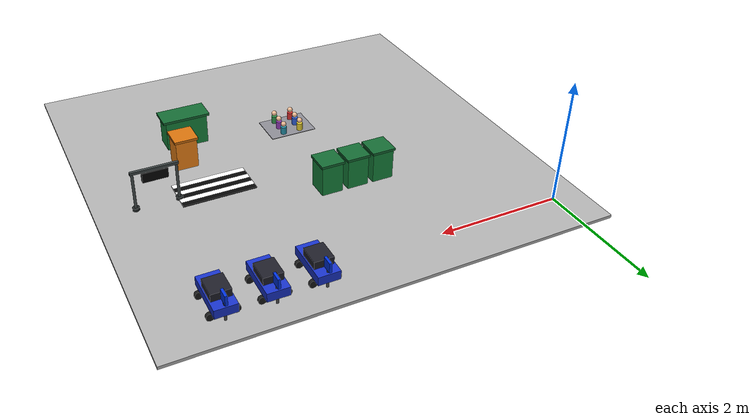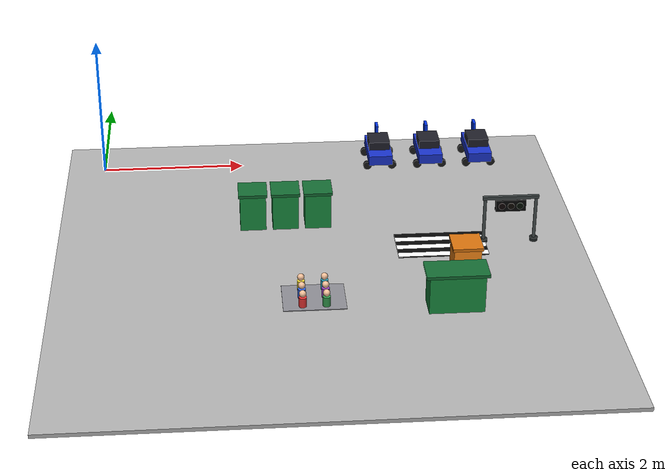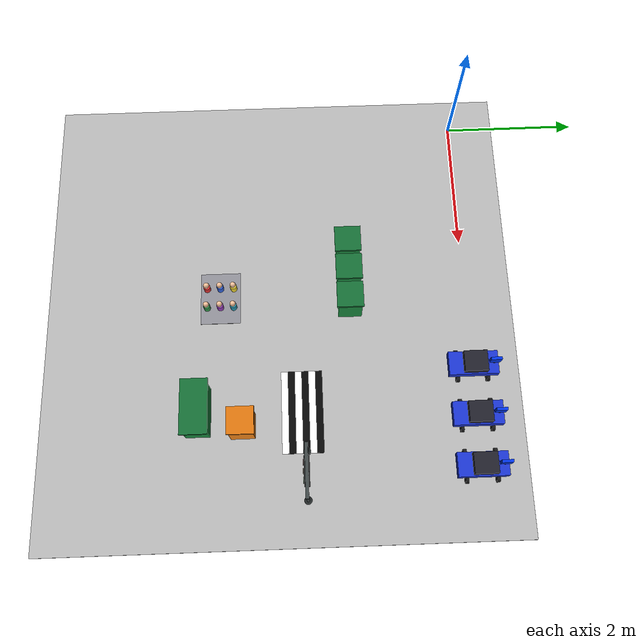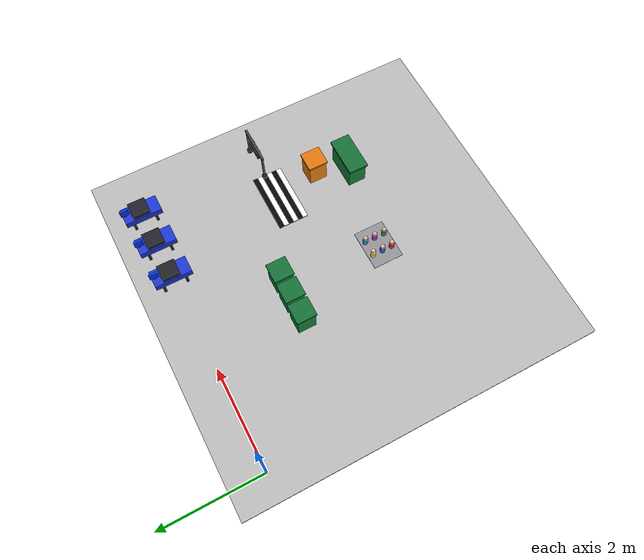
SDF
<sdf version="1.7">
 <world name="robot_nav_field">
  <model name="traffic_light_bottom">
   <static>1</static>
   <link name="gantry">
    <collision name="left_post_collision">
     <pose>-0.34 0 0.32 0 -0 0</pose>
     <geometry><cylinder><radius>0.022</radius><length>0.64</length></cylinder></geometry>
    </collision>
    <collision name="right_post_collision">
     <pose>0.34 0 0.32 0 -0 0</pose>
     <geometry><cylinder><radius>0.022</radius><length>0.64</length></cylinder></geometry>
    </collision>
    <collision name="crossbar_collision">
     <pose>0 0 0.66 0 -0 0</pose>
     <geometry><box><size>0.75 0.045 0.045</size></box></geometry>
    </collision>
    <collision name="housing_collision">
     <pose>0 0 0.55 0 -0 0</pose>
     <geometry><box><size>0.4 0.075 0.16</size></box></geometry>
    </collision>
    <visual name="left_foot">
     <pose>-0.34 0 0.025 0 -0 0</pose>
     <geometry><cylinder><radius>0.055</radius><length>0.05</length></cylinder></geometry>
     <material><ambient>0.06 0.07 0.07 1</ambient><diffuse>0.12 0.14 0.14 1</diffuse></material>
    </visual>
    <visual name="right_foot">
     <pose>0.34 0 0.025 0 -0 0</pose>
     <geometry><cylinder><radius>0.055</radius><length>0.05</length></cylinder></geometry>
     <material><ambient>0.06 0.07 0.07 1</ambient><diffuse>0.12 0.14 0.14 1</diffuse></material>
    </visual>
    <visual name="left_post">
     <pose>-0.34 0 0.32 0 -0 0</pose>
     <geometry><cylinder><radius>0.022</radius><length>0.64</length></cylinder></geometry>
     <material>
      <ambient>0.16 0.18 0.18 1</ambient>
      <diffuse>0.28 0.31 0.31 1</diffuse>
      <specular>0.25 0.25 0.25 1</specular>
     </material>
    </visual>
    <visual name="right_post">
     <pose>0.34 0 0.32 0 -0 0</pose>
     <geometry><cylinder><radius>0.022</radius><length>0.64</length></cylinder></geometry>
     <material>
      <ambient>0.16 0.18 0.18 1</ambient>
      <diffuse>0.28 0.31 0.31 1</diffuse>
      <specular>0.25 0.25 0.25 1</specular>
     </material>
    </visual>
    <visual name="crossbar">
     <pose>0 0 0.66 0 -0 0</pose>
     <geometry><box><size>0.75 0.045 0.045</size></box></geometry>
     <material>
      <ambient>0.12 0.14 0.14 1</ambient>
      <diffuse>0.24 0.27 0.27 1</diffuse>
      <specular>0.25 0.25 0.25 1</specular>
     </material>
    </visual>
    <visual name="left_hanger">
     <pose>-0.14 0 0.615 0 -0 0</pose>
     <geometry><box><size>0.025 0.035 0.07</size></box></geometry>
     <material><ambient>0.06 0.07 0.07 1</ambient><diffuse>0.12 0.14 0.14 1</diffuse></material>
    </visual>
    <visual name="right_hanger">
     <pose>0.14 0 0.615 0 -0 0</pose>
     <geometry><box><size>0.025 0.035 0.07</size></box></geometry>
     <material><ambient>0.06 0.07 0.07 1</ambient><diffuse>0.12 0.14 0.14 1</diffuse></material>
    </visual>
    <visual name="housing">
     <pose>0 0 0.55 0 -0 0</pose>
     <geometry><box><size>0.4 0.075 0.16</size></box></geometry>
     <material>
      <ambient>0.008 0.01 0.01 1</ambient>
      <diffuse>0.016 0.02 0.02 1</diffuse>
      <specular>0.1 0.1 0.1 1</specular>
     </material>
    </visual>
    <visual name="red_lens_off">
     <pose>-0.12 -0.044 0.55 1.5708 -0 0</pose>
     <geometry><cylinder><radius>0.045</radius><length>0.014</length></cylinder></geometry>
     <material><ambient>0.03 0.001 0.001 1</ambient><diffuse>0.045 0.002 0.002 1</diffuse></material>
    </visual>
    <visual name="yellow_lens_off">
     <pose>0 -0.044 0.55 1.5708 -0 0</pose>
     <geometry><cylinder><radius>0.045</radius><length>0.014</length></cylinder></geometry>
     <material><ambient>0.025 0.015 0.001 1</ambient><diffuse>0.04 0.024 0.002 1</diffuse></material>
    </visual>
    <visual name="green_lens_off">
     <pose>0.12 -0.044 0.55 1.5708 -0 0</pose>
     <geometry><cylinder><radius>0.045</radius><length>0.014</length></cylinder></geometry>
     <material><ambient>0.001 0.03 0.003 1</ambient><diffuse>0.002 0.045 0.004 1</diffuse></material>
    </visual>
   </link>
   <pose>5.5 -2.45 0 0 -0 0</pose>
  </model>
  <model name="traffic_light_bottom_red_lens">
   <static>1</static>
   <link name="gantry">
    <collision name="left_post_collision">
     <pose>-0.34 0 0.32 0 -0 0</pose>
     <geometry><cylinder><radius>0.022</radius><length>0.64</length></cylinder></geometry>
    </collision>
    <collision name="right_post_collision">
     <pose>0.34 0 0.32 0 -0 0</pose>
     <geometry><cylinder><radius>0.022</radius><length>0.64</length></cylinder></geometry>
    </collision>
    <collision name="crossbar_collision">
     <pose>0 0 0.66 0 -0 0</pose>
     <geometry><box><size>0.75 0.045 0.045</size></box></geometry>
    </collision>
    <collision name="housing_collision">
     <pose>0 0 0.55 0 -0 0</pose>
     <geometry><box><size>0.4 0.075 0.16</size></box></geometry>
    </collision>
    <visual name="left_foot">
     <pose>-0.34 0 0.025 0 -0 0</pose>
     <geometry><cylinder><radius>0.055</radius><length>0.05</length></cylinder></geometry>
     <material><ambient>0.06 0.07 0.07 1</ambient><diffuse>0.12 0.14 0.14 1</diffuse></material>
    </visual>
    <visual name="right_foot">
     <pose>0.34 0 0.025 0 -0 0</pose>
     <geometry><cylinder><radius>0.055</radius><length>0.05</length></cylinder></geometry>
     <material><ambient>0.06 0.07 0.07 1</ambient><diffuse>0.12 0.14 0.14 1</diffuse></material>
    </visual>
    <visual name="left_post">
     <pose>-0.34 0 0.32 0 -0 0</pose>
     <geometry><cylinder><radius>0.022</radius><length>0.64</length></cylinder></geometry>
     <material>
      <ambient>0.16 0.18 0.18 1</ambient>
      <diffuse>0.28 0.31 0.31 1</diffuse>
      <specular>0.25 0.25 0.25 1</specular>
     </material>
    </visual>
    <visual name="right_post">
     <pose>0.34 0 0.32 0 -0 0</pose>
     <geometry><cylinder><radius>0.022</radius><length>0.64</length></cylinder></geometry>
     <material>
      <ambient>0.16 0.18 0.18 1</ambient>
      <diffuse>0.28 0.31 0.31 1</diffuse>
      <specular>0.25 0.25 0.25 1</specular>
     </material>
    </visual>
    <visual name="crossbar">
     <pose>0 0 0.66 0 -0 0</pose>
     <geometry><box><size>0.75 0.045 0.045</size></box></geometry>
     <material>
      <ambient>0.12 0.14 0.14 1</ambient>
      <diffuse>0.24 0.27 0.27 1</diffuse>
      <specular>0.25 0.25 0.25 1</specular>
     </material>
    </visual>
    <visual name="left_hanger">
     <pose>-0.14 0 0.615 0 -0 0</pose>
     <geometry><box><size>0.025 0.035 0.07</size></box></geometry>
     <material><ambient>0.06 0.07 0.07 1</ambient><diffuse>0.12 0.14 0.14 1</diffuse></material>
    </visual>
    <visual name="right_hanger">
     <pose>0.14 0 0.615 0 -0 0</pose>
     <geometry><box><size>0.025 0.035 0.07</size></box></geometry>
     <material><ambient>0.06 0.07 0.07 1</ambient><diffuse>0.12 0.14 0.14 1</diffuse></material>
    </visual>
    <visual name="housing">
     <pose>0 0 0.55 0 -0 0</pose>
     <geometry><box><size>0.4 0.075 0.16</size></box></geometry>
     <material>
      <ambient>0.008 0.01 0.01 1</ambient>
      <diffuse>0.016 0.02 0.02 1</diffuse>
      <specular>0.1 0.1 0.1 1</specular>
     </material>
    </visual>
    <visual name="red_lens_off">
     <pose>-0.12 -0.044 0.55 1.5708 -0 0</pose>
     <geometry><cylinder><radius>0.045</radius><length>0.014</length></cylinder></geometry>
     <material><ambient>0.03 0.001 0.001 1</ambient><diffuse>0.045 0.002 0.002 1</diffuse></material>
    </visual>
    <visual name="yellow_lens_off">
     <pose>0 -0.044 0.55 1.5708 -0 0</pose>
     <geometry><cylinder><radius>0.045</radius><length>0.014</length></cylinder></geometry>
     <material><ambient>0.025 0.015 0.001 1</ambient><diffuse>0.04 0.024 0.002 1</diffuse></material>
    </visual>
    <visual name="green_lens_off">
     <pose>0.12 -0.044 0.55 1.5708 -0 0</pose>
     <geometry><cylinder><radius>0.045</radius><length>0.014</length></cylinder></geometry>
     <material><ambient>0.001 0.03 0.003 1</ambient><diffuse>0.002 0.045 0.004 1</diffuse></material>
    </visual>
   </link>
   <pose>5.5 -2.45 0 0 -0 0</pose>
  </model>
  <model name="traffic_light_bottom_yellow_lens">
   <static>1</static>
   <link name="gantry">
    <collision name="left_post_collision">
     <pose>-0.34 0 0.32 0 -0 0</pose>
     <geometry><cylinder><radius>0.022</radius><length>0.64</length></cylinder></geometry>
    </collision>
    <collision name="right_post_collision">
     <pose>0.34 0 0.32 0 -0 0</pose>
     <geometry><cylinder><radius>0.022</radius><length>0.64</length></cylinder></geometry>
    </collision>
    <collision name="crossbar_collision">
     <pose>0 0 0.66 0 -0 0</pose>
     <geometry><box><size>0.75 0.045 0.045</size></box></geometry>
    </collision>
    <collision name="housing_collision">
     <pose>0 0 0.55 0 -0 0</pose>
     <geometry><box><size>0.4 0.075 0.16</size></box></geometry>
    </collision>
    <visual name="left_foot">
     <pose>-0.34 0 0.025 0 -0 0</pose>
     <geometry><cylinder><radius>0.055</radius><length>0.05</length></cylinder></geometry>
     <material><ambient>0.06 0.07 0.07 1</ambient><diffuse>0.12 0.14 0.14 1</diffuse></material>
    </visual>
    <visual name="right_foot">
     <pose>0.34 0 0.025 0 -0 0</pose>
     <geometry><cylinder><radius>0.055</radius><length>0.05</length></cylinder></geometry>
     <material><ambient>0.06 0.07 0.07 1</ambient><diffuse>0.12 0.14 0.14 1</diffuse></material>
    </visual>
    <visual name="left_post">
     <pose>-0.34 0 0.32 0 -0 0</pose>
     <geometry><cylinder><radius>0.022</radius><length>0.64</length></cylinder></geometry>
     <material>
      <ambient>0.16 0.18 0.18 1</ambient>
      <diffuse>0.28 0.31 0.31 1</diffuse>
      <specular>0.25 0.25 0.25 1</specular>
     </material>
    </visual>
    <visual name="right_post">
     <pose>0.34 0 0.32 0 -0 0</pose>
     <geometry><cylinder><radius>0.022</radius><length>0.64</length></cylinder></geometry>
     <material>
      <ambient>0.16 0.18 0.18 1</ambient>
      <diffuse>0.28 0.31 0.31 1</diffuse>
      <specular>0.25 0.25 0.25 1</specular>
     </material>
    </visual>
    <visual name="crossbar">
     <pose>0 0 0.66 0 -0 0</pose>
     <geometry><box><size>0.75 0.045 0.045</size></box></geometry>
     <material>
      <ambient>0.12 0.14 0.14 1</ambient>
      <diffuse>0.24 0.27 0.27 1</diffuse>
      <specular>0.25 0.25 0.25 1</specular>
     </material>
    </visual>
    <visual name="left_hanger">
     <pose>-0.14 0 0.615 0 -0 0</pose>
     <geometry><box><size>0.025 0.035 0.07</size></box></geometry>
     <material><ambient>0.06 0.07 0.07 1</ambient><diffuse>0.12 0.14 0.14 1</diffuse></material>
    </visual>
    <visual name="right_hanger">
     <pose>0.14 0 0.615 0 -0 0</pose>
     <geometry><box><size>0.025 0.035 0.07</size></box></geometry>
     <material><ambient>0.06 0.07 0.07 1</ambient><diffuse>0.12 0.14 0.14 1</diffuse></material>
    </visual>
    <visual name="housing">
     <pose>0 0 0.55 0 -0 0</pose>
     <geometry><box><size>0.4 0.075 0.16</size></box></geometry>
     <material>
      <ambient>0.008 0.01 0.01 1</ambient>
      <diffuse>0.016 0.02 0.02 1</diffuse>
      <specular>0.1 0.1 0.1 1</specular>
     </material>
    </visual>
    <visual name="red_lens_off">
     <pose>-0.12 -0.044 0.55 1.5708 -0 0</pose>
     <geometry><cylinder><radius>0.045</radius><length>0.014</length></cylinder></geometry>
     <material><ambient>0.03 0.001 0.001 1</ambient><diffuse>0.045 0.002 0.002 1</diffuse></material>
    </visual>
    <visual name="yellow_lens_off">
     <pose>0 -0.044 0.55 1.5708 -0 0</pose>
     <geometry><cylinder><radius>0.045</radius><length>0.014</length></cylinder></geometry>
     <material><ambient>0.025 0.015 0.001 1</ambient><diffuse>0.04 0.024 0.002 1</diffuse></material>
    </visual>
    <visual name="green_lens_off">
     <pose>0.12 -0.044 0.55 1.5708 -0 0</pose>
     <geometry><cylinder><radius>0.045</radius><length>0.014</length></cylinder></geometry>
     <material><ambient>0.001 0.03 0.003 1</ambient><diffuse>0.002 0.045 0.004 1</diffuse></material>
    </visual>
   </link>
   <pose>5.5 -2.45 0 0 -0 0</pose>
  </model>
  <model name="traffic_light_bottom_green_lens">
   <static>1</static>
   <link name="gantry">
    <collision name="left_post_collision">
     <pose>-0.34 0 0.32 0 -0 0</pose>
     <geometry><cylinder><radius>0.022</radius><length>0.64</length></cylinder></geometry>
    </collision>
    <collision name="right_post_collision">
     <pose>0.34 0 0.32 0 -0 0</pose>
     <geometry><cylinder><radius>0.022</radius><length>0.64</length></cylinder></geometry>
    </collision>
    <collision name="crossbar_collision">
     <pose>0 0 0.66 0 -0 0</pose>
     <geometry><box><size>0.75 0.045 0.045</size></box></geometry>
    </collision>
    <collision name="housing_collision">
     <pose>0 0 0.55 0 -0 0</pose>
     <geometry><box><size>0.4 0.075 0.16</size></box></geometry>
    </collision>
    <visual name="left_foot">
     <pose>-0.34 0 0.025 0 -0 0</pose>
     <geometry><cylinder><radius>0.055</radius><length>0.05</length></cylinder></geometry>
     <material><ambient>0.06 0.07 0.07 1</ambient><diffuse>0.12 0.14 0.14 1</diffuse></material>
    </visual>
    <visual name="right_foot">
     <pose>0.34 0 0.025 0 -0 0</pose>
     <geometry><cylinder><radius>0.055</radius><length>0.05</length></cylinder></geometry>
     <material><ambient>0.06 0.07 0.07 1</ambient><diffuse>0.12 0.14 0.14 1</diffuse></material>
    </visual>
    <visual name="left_post">
     <pose>-0.34 0 0.32 0 -0 0</pose>
     <geometry><cylinder><radius>0.022</radius><length>0.64</length></cylinder></geometry>
     <material>
      <ambient>0.16 0.18 0.18 1</ambient>
      <diffuse>0.28 0.31 0.31 1</diffuse>
      <specular>0.25 0.25 0.25 1</specular>
     </material>
    </visual>
    <visual name="right_post">
     <pose>0.34 0 0.32 0 -0 0</pose>
     <geometry><cylinder><radius>0.022</radius><length>0.64</length></cylinder></geometry>
     <material>
      <ambient>0.16 0.18 0.18 1</ambient>
      <diffuse>0.28 0.31 0.31 1</diffuse>
      <specular>0.25 0.25 0.25 1</specular>
     </material>
    </visual>
    <visual name="crossbar">
     <pose>0 0 0.66 0 -0 0</pose>
     <geometry><box><size>0.75 0.045 0.045</size></box></geometry>
     <material>
      <ambient>0.12 0.14 0.14 1</ambient>
      <diffuse>0.24 0.27 0.27 1</diffuse>
      <specular>0.25 0.25 0.25 1</specular>
     </material>
    </visual>
    <visual name="left_hanger">
     <pose>-0.14 0 0.615 0 -0 0</pose>
     <geometry><box><size>0.025 0.035 0.07</size></box></geometry>
     <material><ambient>0.06 0.07 0.07 1</ambient><diffuse>0.12 0.14 0.14 1</diffuse></material>
    </visual>
    <visual name="right_hanger">
     <pose>0.14 0 0.615 0 -0 0</pose>
     <geometry><box><size>0.025 0.035 0.07</size></box></geometry>
     <material><ambient>0.06 0.07 0.07 1</ambient><diffuse>0.12 0.14 0.14 1</diffuse></material>
    </visual>
    <visual name="housing">
     <pose>0 0 0.55 0 -0 0</pose>
     <geometry><box><size>0.4 0.075 0.16</size></box></geometry>
     <material>
      <ambient>0.008 0.01 0.01 1</ambient>
      <diffuse>0.016 0.02 0.02 1</diffuse>
      <specular>0.1 0.1 0.1 1</specular>
     </material>
    </visual>
    <visual name="red_lens_off">
     <pose>-0.12 -0.044 0.55 1.5708 -0 0</pose>
     <geometry><cylinder><radius>0.045</radius><length>0.014</length></cylinder></geometry>
     <material><ambient>0.03 0.001 0.001 1</ambient><diffuse>0.045 0.002 0.002 1</diffuse></material>
    </visual>
    <visual name="yellow_lens_off">
     <pose>0 -0.044 0.55 1.5708 -0 0</pose>
     <geometry><cylinder><radius>0.045</radius><length>0.014</length></cylinder></geometry>
     <material><ambient>0.025 0.015 0.001 1</ambient><diffuse>0.04 0.024 0.002 1</diffuse></material>
    </visual>
    <visual name="green_lens_off">
     <pose>0.12 -0.044 0.55 1.5708 -0 0</pose>
     <geometry><cylinder><radius>0.045</radius><length>0.014</length></cylinder></geometry>
     <material><ambient>0.001 0.03 0.003 1</ambient><diffuse>0.002 0.045 0.004 1</diffuse></material>
    </visual>
   </link>
   <pose>5.5 -2.45 0 0 -0 0</pose>
  </model>
  <model name="ground_plane">
   <static>1</static>
   <pose>2.975 -2.8 -0.025 0 -0 0</pose>
   <link name="ground_link">
    <visual name="ground_visual">
     <geometry><box><size>7 7 0.05</size></box></geometry>
     <material><ambient>0.7 0.7 0.7 1</ambient><diffuse>0.7 0.7 0.7 1</diffuse></material>
    </visual>
    <collision name="ground_collision"><geometry><box><size>7 7 0.05</size></box></geometry></collision>
   </link>
  </model>
  <model name="block_b">
   <static>1</static>
   <pose>2.8 -3.7 0 0 -0 0</pose>
   <link name="block_b_link">
    <visual name="sidewalk">
     <pose>0 0 0.005 0 -0 0</pose>
     <geometry><box><size>0.8 0.6 0.01</size></box></geometry>
     <material><ambient>0.55 0.55 0.58 1</ambient><diffuse>0.55 0.55 0.58 1</diffuse></material>
    </visual>
    <collision name="sidewalk_col">
     <pose>0 0 0.005 0 -0 0</pose>
     <geometry><box><size>0.8 0.6 0.01</size></box></geometry>
    </collision>
    <visual name="p1_body">
     <pose>-0.15 -0.2 0.07 0 -0 0</pose>
     <geometry><cylinder><radius>0.05</radius><length>0.14</length></cylinder></geometry>
     <material><ambient>0.9 0.2 0.2 1</ambient><diffuse>0.9 0.2 0.2 1</diffuse></material>
    </visual>
    <visual name="p1_head">
     <pose>-0.15 -0.2 0.19 0 -0 0</pose>
     <geometry><sphere><radius>0.045</radius></sphere></geometry>
     <material><ambient>0.95 0.75 0.6 1</ambient><diffuse>0.95 0.75 0.6 1</diffuse></material>
    </visual>
    <visual name="p2_body">
     <pose>-0.15 0 0.07 0 -0 0</pose>
     <geometry><cylinder><radius>0.05</radius><length>0.14</length></cylinder></geometry>
     <material><ambient>0.2 0.4 0.9 1</ambient><diffuse>0.2 0.4 0.9 1</diffuse></material>
    </visual>
    <visual name="p2_head">
     <pose>-0.15 0 0.19 0 -0 0</pose>
     <geometry><sphere><radius>0.045</radius></sphere></geometry>
     <material><ambient>0.95 0.75 0.6 1</ambient><diffuse>0.95 0.75 0.6 1</diffuse></material>
    </visual>
    <visual name="p3_body">
     <pose>-0.15 0.2 0.07 0 -0 0</pose>
     <geometry><cylinder><radius>0.05</radius><length>0.14</length></cylinder></geometry>
     <material><ambient>0.95 0.85 0.2 1</ambient><diffuse>0.95 0.85 0.2 1</diffuse></material>
    </visual>
    <visual name="p3_head">
     <pose>-0.15 0.2 0.19 0 -0 0</pose>
     <geometry><sphere><radius>0.045</radius></sphere></geometry>
     <material><ambient>0.95 0.75 0.6 1</ambient><diffuse>0.95 0.75 0.6 1</diffuse></material>
    </visual>
    <visual name="p4_body">
     <pose>0.15 -0.2 0.07 0 -0 0</pose>
     <geometry><cylinder><radius>0.05</radius><length>0.14</length></cylinder></geometry>
     <material><ambient>0.2 0.6 0.3 1</ambient><diffuse>0.2 0.6 0.3 1</diffuse></material>
    </visual>
    <visual name="p4_head">
     <pose>0.15 -0.2 0.19 0 -0 0</pose>
     <geometry><sphere><radius>0.045</radius></sphere></geometry>
     <material><ambient>0.95 0.75 0.6 1</ambient><diffuse>0.95 0.75 0.6 1</diffuse></material>
    </visual>
    <visual name="p5_body">
     <pose>0.15 0 0.07 0 -0 0</pose>
     <geometry><cylinder><radius>0.05</radius><length>0.14</length></cylinder></geometry>
     <material><ambient>0.6 0.25 0.75 1</ambient><diffuse>0.6 0.25 0.75 1</diffuse></material>
    </visual>
    <visual name="p5_head">
     <pose>0.15 0 0.19 0 -0 0</pose>
     <geometry><sphere><radius>0.045</radius></sphere></geometry>
     <material><ambient>0.95 0.75 0.6 1</ambient><diffuse>0.95 0.75 0.6 1</diffuse></material>
    </visual>
    <visual name="p6_body">
     <pose>0.15 0.2 0.07 0 -0 0</pose>
     <geometry><cylinder><radius>0.05</radius><length>0.14</length></cylinder></geometry>
     <material><ambient>0.15 0.6 0.7 1</ambient><diffuse>0.15 0.6 0.7 1</diffuse></material>
    </visual>
    <visual name="p6_head">
     <pose>0.15 0.2 0.19 0 -0 0</pose>
     <geometry><sphere><radius>0.045</radius></sphere></geometry>
     <material><ambient>0.95 0.75 0.6 1</ambient><diffuse>0.95 0.75 0.6 1</diffuse></material>
    </visual>
   </link>
  </model>
  <model name="building_a">
   <static>1</static>
   <pose>2.1 -1.75 0 0 -0 0</pose>
   <link name="building_a_link">
    <visual name="body">
     <pose>0 0 0.25 0 -0 0</pose>
     <geometry><box><size>0.35 0.35 0.5</size></box></geometry>
     <material><ambient>0.1 0.55 0.25 1</ambient><diffuse>0.1 0.55 0.25 1</diffuse></material>
    </visual>
    <collision name="body_col">
     <pose>0 0 0.25 0 -0 0</pose>
     <geometry><box><size>0.35 0.35 0.5</size></box></geometry>
    </collision>
    <visual name="roof">
     <pose>0 0 0.52 0 -0 0</pose>
     <geometry><box><size>0.39 0.39 0.04</size></box></geometry>
     <material><ambient>0.08 0.42 0.2 1</ambient><diffuse>0.08 0.42 0.2 1</diffuse></material>
    </visual>
   </link>
  </model>
  <model name="building_b">
   <static>1</static>
   <pose>2.54 -1.75 0 0 -0 0</pose>
   <link name="building_b_link">
    <visual name="body">
     <pose>0 0 0.25 0 -0 0</pose>
     <geometry><box><size>0.35 0.35 0.5</size></box></geometry>
     <material><ambient>0.1 0.55 0.25 1</ambient><diffuse>0.1 0.55 0.25 1</diffuse></material>
    </visual>
    <collision name="body_col">
     <pose>0 0 0.25 0 -0 0</pose>
     <geometry><box><size>0.35 0.35 0.5</size></box></geometry>
    </collision>
    <visual name="roof">
     <pose>0 0 0.52 0 -0 0</pose>
     <geometry><box><size>0.39 0.39 0.04</size></box></geometry>
     <material><ambient>0.08 0.42 0.2 1</ambient><diffuse>0.08 0.42 0.2 1</diffuse></material>
    </visual>
   </link>
  </model>
  <model name="building_c">
   <static>1</static>
   <pose>2.98 -1.75 0 0 -0 0</pose>
   <link name="building_c_link">
    <visual name="body">
     <pose>0 0 0.25 0 -0 0</pose>
     <geometry><box><size>0.35 0.35 0.5</size></box></geometry>
     <material><ambient>0.1 0.55 0.25 1</ambient><diffuse>0.1 0.55 0.25 1</diffuse></material>
    </visual>
    <collision name="body_col">
     <pose>0 0 0.25 0 -0 0</pose>
     <geometry><box><size>0.35 0.35 0.5</size></box></geometry>
    </collision>
    <visual name="roof">
     <pose>0 0 0.52 0 -0 0</pose>
     <geometry><box><size>0.39 0.39 0.04</size></box></geometry>
     <material><ambient>0.08 0.42 0.2 1</ambient><diffuse>0.08 0.42 0.2 1</diffuse></material>
    </visual>
   </link>
  </model>
  <model name="car_slot_3">
   <static>1</static>
   <pose>4 0 0 0 -0 1.5708</pose>
   <link name="car_slot_3_link">
    <visual name="body">
     <pose>0 0 0.19 0 -0 0</pose>
     <geometry><box><size>0.72 0.34 0.14</size></box></geometry>
     <material><ambient>0.1 0.2 0.8 1</ambient><diffuse>0.1 0.2 0.8 1</diffuse></material>
    </visual>
    <collision name="body_col">
     <pose>0 0 0.19 0 -0 0</pose>
     <geometry><box><size>0.72 0.34 0.14</size></box></geometry>
    </collision>
    <visual name="cabin">
     <pose>0.02 0 0.32 0 -0 0</pose>
     <geometry><box><size>0.34 0.3 0.12</size></box></geometry>
     <material><ambient>0.12 0.12 0.16 1</ambient><diffuse>0.12 0.12 0.16 1</diffuse></material>
    </visual>
    <visual name="w1">
     <pose>0.22 0.18 0.06 3.14159 1.57079 3.14159</pose>
     <geometry><cylinder><radius>0.06</radius><length>0.05</length></cylinder></geometry>
     <material><ambient>0.1 0.1 0.1 1</ambient><diffuse>0.1 0.1 0.1 1</diffuse></material>
    </visual>
    <visual name="w2">
     <pose>0.22 -0.18 0.06 3.14159 1.57079 3.14159</pose>
     <geometry><cylinder><radius>0.06</radius><length>0.05</length></cylinder></geometry>
     <material><ambient>0.1 0.1 0.1 1</ambient><diffuse>0.1 0.1 0.1 1</diffuse></material>
    </visual>
    <visual name="w3">
     <pose>-0.22 0.18 0.06 3.14159 1.57079 3.14159</pose>
     <geometry><cylinder><radius>0.06</radius><length>0.05</length></cylinder></geometry>
     <material><ambient>0.1 0.1 0.1 1</ambient><diffuse>0.1 0.1 0.1 1</diffuse></material>
    </visual>
    <visual name="w4">
     <pose>-0.22 -0.18 0.06 3.14159 1.57079 3.14159</pose>
     <geometry><cylinder><radius>0.06</radius><length>0.05</length></cylinder></geometry>
     <material><ambient>0.1 0.1 0.1 1</ambient><diffuse>0.1 0.1 0.1 1</diffuse></material>
    </visual>
   </link>
  </model>
  <model name="car_slot_2">
   <static>1</static>
   <pose>4.73 0 0 0 -0 1.5708</pose>
   <link name="car_slot_2_link">
    <visual name="body">
     <pose>0 0 0.19 0 -0 0</pose>
     <geometry><box><size>0.72 0.34 0.14</size></box></geometry>
     <material><ambient>0.1 0.2 0.8 1</ambient><diffuse>0.1 0.2 0.8 1</diffuse></material>
    </visual>
    <collision name="body_col">
     <pose>0 0 0.19 0 -0 0</pose>
     <geometry><box><size>0.72 0.34 0.14</size></box></geometry>
    </collision>
    <visual name="cabin">
     <pose>0.02 0 0.32 0 -0 0</pose>
     <geometry><box><size>0.34 0.3 0.12</size></box></geometry>
     <material><ambient>0.12 0.12 0.16 1</ambient><diffuse>0.12 0.12 0.16 1</diffuse></material>
    </visual>
    <visual name="w1">
     <pose>0.22 0.18 0.06 3.14159 1.57079 3.14159</pose>
     <geometry><cylinder><radius>0.06</radius><length>0.05</length></cylinder></geometry>
     <material><ambient>0.1 0.1 0.1 1</ambient><diffuse>0.1 0.1 0.1 1</diffuse></material>
    </visual>
    <visual name="w2">
     <pose>0.22 -0.18 0.06 3.14159 1.57079 3.14159</pose>
     <geometry><cylinder><radius>0.06</radius><length>0.05</length></cylinder></geometry>
     <material><ambient>0.1 0.1 0.1 1</ambient><diffuse>0.1 0.1 0.1 1</diffuse></material>
    </visual>
    <visual name="w3">
     <pose>-0.22 0.18 0.06 3.14159 1.57079 3.14159</pose>
     <geometry><cylinder><radius>0.06</radius><length>0.05</length></cylinder></geometry>
     <material><ambient>0.1 0.1 0.1 1</ambient><diffuse>0.1 0.1 0.1 1</diffuse></material>
    </visual>
    <visual name="w4">
     <pose>-0.22 -0.18 0.06 3.14159 1.57079 3.14159</pose>
     <geometry><cylinder><radius>0.06</radius><length>0.05</length></cylinder></geometry>
     <material><ambient>0.1 0.1 0.1 1</ambient><diffuse>0.1 0.1 0.1 1</diffuse></material>
    </visual>
   </link>
  </model>
  <model name="car_slot_1">
   <static>1</static>
   <pose>5.45 0 0 0 -0 1.5708</pose>
   <link name="car_slot_1_link">
    <visual name="body">
     <pose>0 0 0.19 0 -0 0</pose>
     <geometry><box><size>0.72 0.34 0.14</size></box></geometry>
     <material><ambient>0.1 0.2 0.8 1</ambient><diffuse>0.1 0.2 0.8 1</diffuse></material>
    </visual>
    <collision name="body_col">
     <pose>0 0 0.19 0 -0 0</pose>
     <geometry><box><size>0.72 0.34 0.14</size></box></geometry>
    </collision>
    <visual name="cabin">
     <pose>0.02 0 0.32 0 -0 0</pose>
     <geometry><box><size>0.34 0.3 0.12</size></box></geometry>
     <material><ambient>0.12 0.12 0.16 1</ambient><diffuse>0.12 0.12 0.16 1</diffuse></material>
    </visual>
    <visual name="w1">
     <pose>0.22 0.18 0.06 3.14159 1.57079 3.14159</pose>
     <geometry><cylinder><radius>0.06</radius><length>0.05</length></cylinder></geometry>
     <material><ambient>0.1 0.1 0.1 1</ambient><diffuse>0.1 0.1 0.1 1</diffuse></material>
    </visual>
    <visual name="w2">
     <pose>0.22 -0.18 0.06 3.14159 1.57079 3.14159</pose>
     <geometry><cylinder><radius>0.06</radius><length>0.05</length></cylinder></geometry>
     <material><ambient>0.1 0.1 0.1 1</ambient><diffuse>0.1 0.1 0.1 1</diffuse></material>
    </visual>
    <visual name="w3">
     <pose>-0.22 0.18 0.06 3.14159 1.57079 3.14159</pose>
     <geometry><cylinder><radius>0.06</radius><length>0.05</length></cylinder></geometry>
     <material><ambient>0.1 0.1 0.1 1</ambient><diffuse>0.1 0.1 0.1 1</diffuse></material>
    </visual>
    <visual name="w4">
     <pose>-0.22 -0.18 0.06 3.14159 1.57079 3.14159</pose>
     <geometry><cylinder><radius>0.06</radius><length>0.05</length></cylinder></geometry>
     <material><ambient>0.1 0.1 0.1 1</ambient><diffuse>0.1 0.1 0.1 1</diffuse></material>
    </visual>
   </link>
  </model>
  <model name="p_sign_slot_3">
   <static>1</static>
   <pose>4 0.3 0 0 -0 0</pose>
   <link name="ps3_link">
    <visual name="pole">
     <pose>0 0 0.175 0 -0 0</pose>
     <geometry><cylinder><radius>0.02</radius><length>0.35</length></cylinder></geometry>
     <material><ambient>0.3 0.3 0.3 1</ambient><diffuse>0.3 0.3 0.3 1</diffuse></material>
    </visual>
    <collision name="pole_col">
     <pose>0 0 0.175 0 -0 0</pose>
     <geometry><cylinder><radius>0.02</radius><length>0.35</length></cylinder></geometry>
    </collision>
    <visual name="sign">
     <pose>0 0 0.38 0 -0 0</pose>
     <geometry><box><size>0.04 0.16 0.16</size></box></geometry>
     <material><ambient>0 0.2 0.9 1</ambient><diffuse>0 0.2 0.9 1</diffuse></material>
    </visual>
   </link>
  </model>
  <model name="p_sign_slot_2">
   <static>1</static>
   <pose>4.73 0.3 0 0 -0 0</pose>
   <link name="ps2_link">
    <visual name="pole">
     <pose>0 0 0.175 0 -0 0</pose>
     <geometry><cylinder><radius>0.02</radius><length>0.35</length></cylinder></geometry>
     <material><ambient>0.3 0.3 0.3 1</ambient><diffuse>0.3 0.3 0.3 1</diffuse></material>
    </visual>
    <collision name="pole_col">
     <pose>0 0 0.175 0 -0 0</pose>
     <geometry><cylinder><radius>0.02</radius><length>0.35</length></cylinder></geometry>
    </collision>
    <visual name="sign">
     <pose>0 0 0.38 0 -0 0</pose>
     <geometry><box><size>0.04 0.16 0.16</size></box></geometry>
     <material><ambient>0 0.2 0.9 1</ambient><diffuse>0 0.2 0.9 1</diffuse></material>
    </visual>
   </link>
  </model>
  <model name="p_sign_slot_1">
   <static>1</static>
   <pose>5.45 0.3 0 0 -0 0</pose>
   <link name="ps1_link">
    <visual name="pole">
     <pose>0 0 0.175 0 -0 0</pose>
     <geometry><cylinder><radius>0.02</radius><length>0.35</length></cylinder></geometry>
     <material><ambient>0.3 0.3 0.3 1</ambient><diffuse>0.3 0.3 0.3 1</diffuse></material>
    </visual>
    <collision name="pole_col">
     <pose>0 0 0.175 0 -0 0</pose>
     <geometry><cylinder><radius>0.02</radius><length>0.35</length></cylinder></geometry>
    </collision>
    <visual name="sign">
     <pose>0 0 0.38 0 -0 0</pose>
     <geometry><box><size>0.04 0.16 0.16</size></box></geometry>
     <material><ambient>0 0.2 0.9 1</ambient><diffuse>0 0.2 0.9 1</diffuse></material>
    </visual>
   </link>
  </model>
  <model name="building_d">
   <static>1</static>
   <pose>4.55169 -4.00555 0 0 -0 0</pose>
   <link name="building_d_link">
    <visual name="body">
     <pose>0 0 0.25 0 -0 0</pose>
     <geometry><box><size>0.7 0.35 0.5</size></box></geometry>
     <material><ambient>0.1 0.55 0.25 1</ambient><diffuse>0.1 0.55 0.25 1</diffuse></material>
    </visual>
    <collision name="body_col">
     <pose>0 0 0.25 0 -0 0</pose>
     <geometry><box><size>0.7 0.35 0.5</size></box></geometry>
    </collision>
    <visual name="roof">
     <pose>0 0 0.52 0 -0 0</pose>
     <geometry><box><size>0.79 0.39 0.04</size></box></geometry>
     <material><ambient>0.08 0.42 0.2 1</ambient><diffuse>0.08 0.42 0.2 1</diffuse></material>
    </visual>
   </link>
  </model>
  <model name="station">
   <static>1</static>
   <pose>4.77054 -3.35881 0 0 -0 0</pose>
   <link name="station_link">
    <visual name="body">
     <pose>0 0 0.25 0 -0 0</pose>
     <geometry><box><size>0.35 0.35 0.5</size></box></geometry>
     <material><ambient>1 0.55 0.1 1</ambient><diffuse>1 0.55 0.1 1</diffuse></material>
    </visual>
    <collision name="body_col">
     <pose>0 0 0.25 0 -0 0</pose>
     <geometry><box><size>0.35 0.35 0.5</size></box></geometry>
    </collision>
    <visual name="roof">
     <pose>0 0 0.52 0 -0 0</pose>
     <geometry><box><size>0.39 0.39 0.04</size></box></geometry>
     <material><ambient>0.85 0.45 0.05 1</ambient><diffuse>0.85 0.45 0.05 1</diffuse></material>
    </visual>
   </link>
  </model>
  <model name="zebra_bottom">
   <static>1</static>
   <pose>4.58209 -2.50434 0 0 -0 0</pose>
   <link name="zebra_bottom_link">
    <visual name="base">
     <pose>0 0 0.006 0 -0 0</pose>
     <geometry><box><size>1.2 0.6 0.012</size></box></geometry>
     <material><ambient>0.2 0.2 0.2 1</ambient><diffuse>0.2 0.2 0.2 1</diffuse></material>
    </visual>
    <collision name="base_col">
     <pose>0 0 0.006 0 -0 0</pose>
     <geometry><box><size>1.2 0.6 0.012</size></box></geometry>
    </collision>
    <visual name="w1">
     <pose>0 -0.25 0.013 0 -0 0</pose>
     <geometry><box><size>1.2 0.1 0.014</size></box></geometry>
     <material><ambient>1 1 1 1</ambient><diffuse>1 1 1 1</diffuse></material>
    </visual>
    <visual name="k1">
     <pose>0 -0.15 0.013 0 -0 0</pose>
     <geometry><box><size>1.2 0.1 0.014</size></box></geometry>
     <material><ambient>0.02 0.02 0.02 1</ambient><diffuse>0.02 0.02 0.02 1</diffuse></material>
    </visual>
    <visual name="w2">
     <pose>0 -0.05 0.013 0 -0 0</pose>
     <geometry><box><size>1.2 0.1 0.014</size></box></geometry>
     <material><ambient>1 1 1 1</ambient><diffuse>1 1 1 1</diffuse></material>
    </visual>
    <visual name="k2">
     <pose>0 0.05 0.013 0 -0 0</pose>
     <geometry><box><size>1.2 0.1 0.014</size></box></geometry>
     <material><ambient>0.02 0.02 0.02 1</ambient><diffuse>0.02 0.02 0.02 1</diffuse></material>
    </visual>
    <visual name="w3">
     <pose>0 0.15 0.013 0 -0 0</pose>
     <geometry><box><size>1.2 0.1 0.014</size></box></geometry>
     <material><ambient>1 1 1 1</ambient><diffuse>1 1 1 1</diffuse></material>
    </visual>
    <visual name="k3">
     <pose>0 0.25 0.013 0 -0 0</pose>
     <geometry><box><size>1.2 0.1 0.014</size></box></geometry>
     <material><ambient>0.02 0.02 0.02 1</ambient><diffuse>0.02 0.02 0.02 1</diffuse></material>
    </visual>
   </link>
  </model>
 </world>
</sdf>
